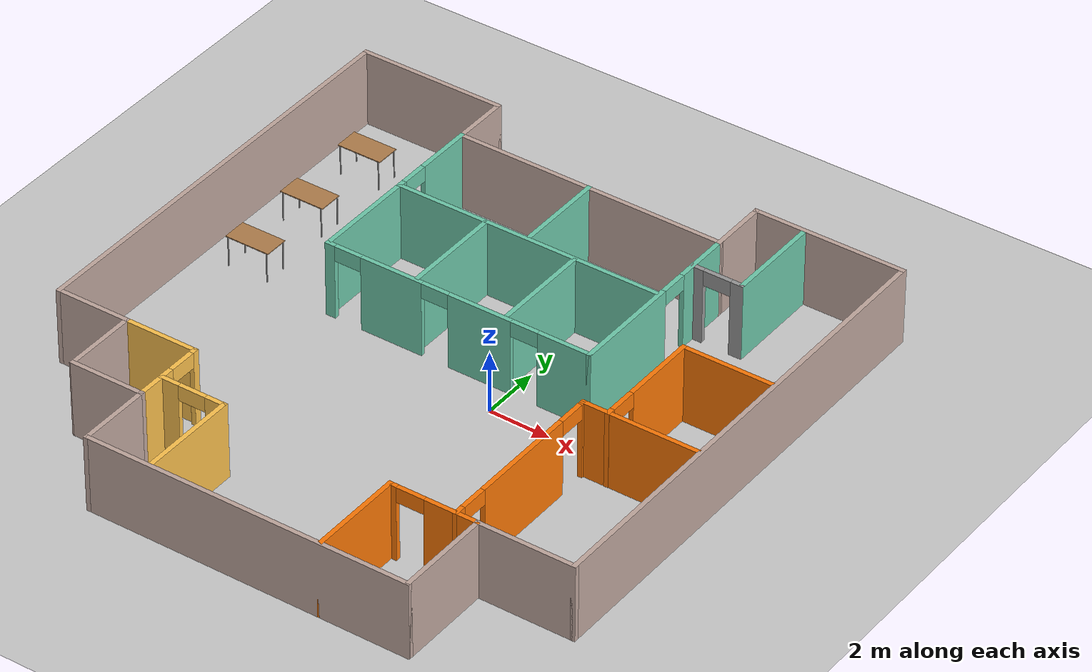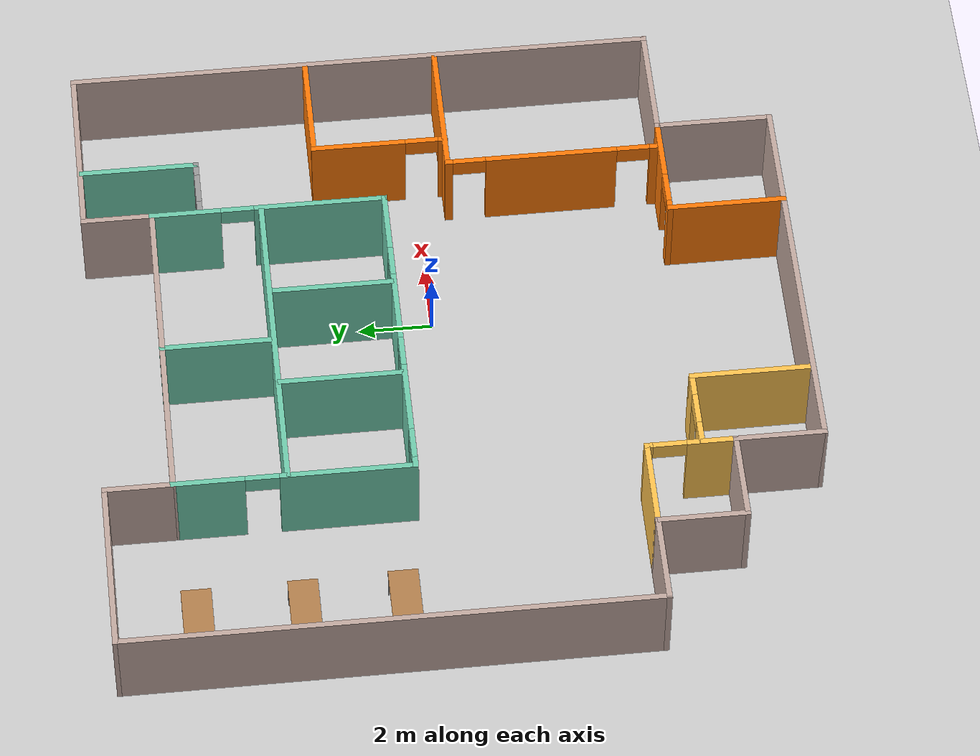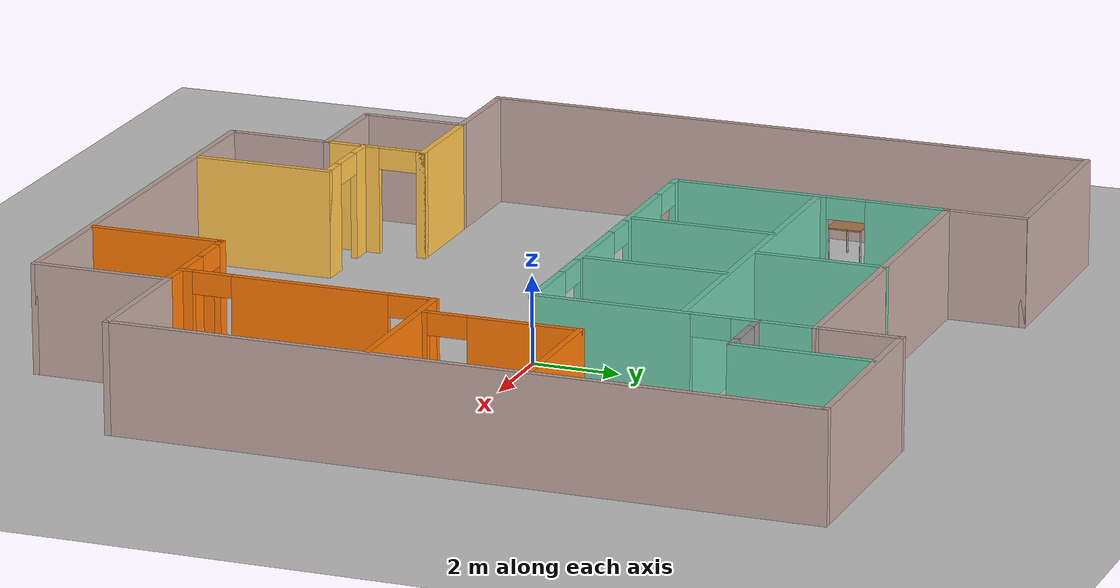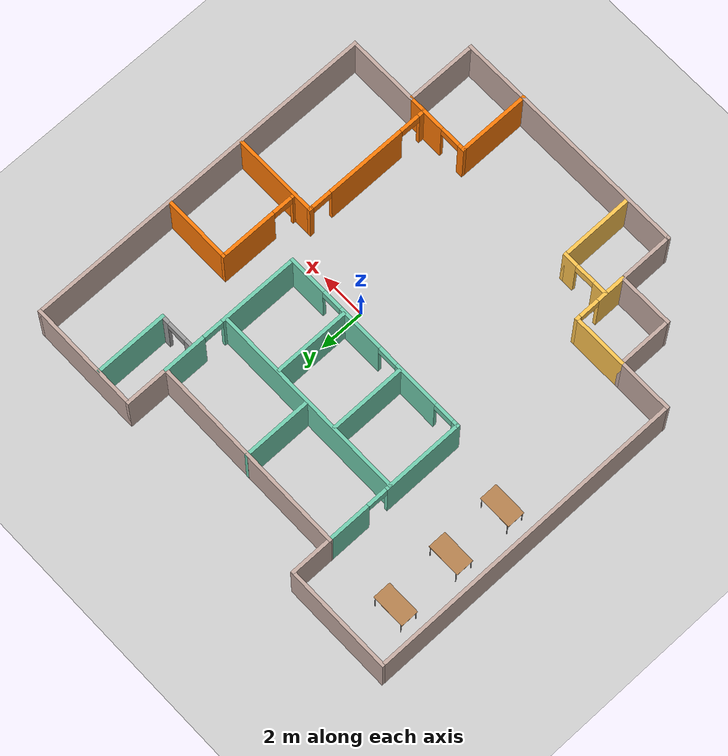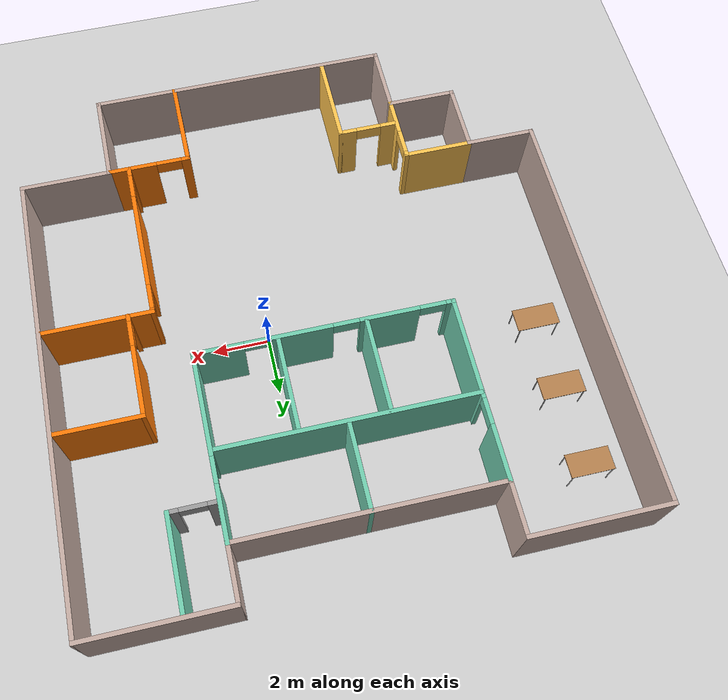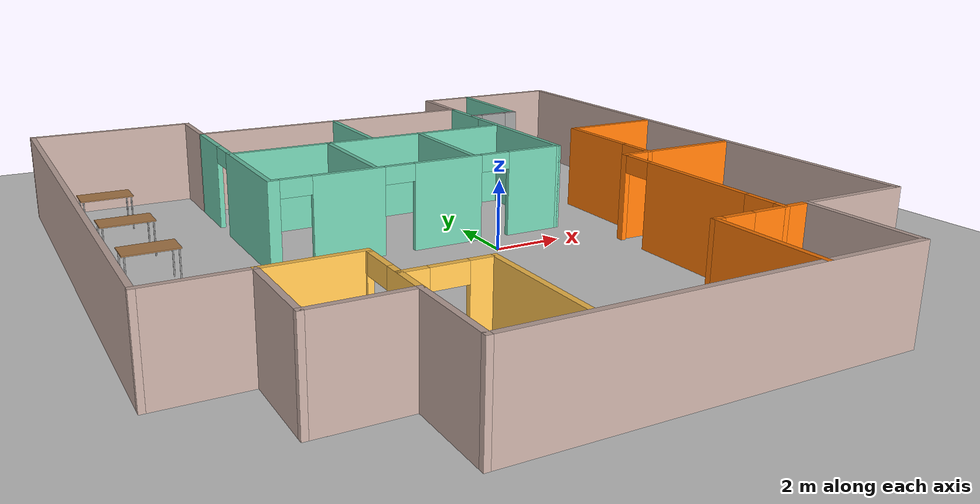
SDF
<sdf version="1.6">
 <world name="default">
  <model name="ground_plane">
   <static>1</static>
   <link name="link">
    <collision name="collision">
     <geometry><plane><normal>0 0 1</normal><size>100 100</size></plane></geometry>
     <surface>
      <contact><collide_bitmask>65535</collide_bitmask></contact>
      <friction><ode><mu>100</mu><mu2>50</mu2></ode></friction>
     </surface>
    </collision>
    <visual name="visual">
     <cast_shadows>0</cast_shadows>
     <geometry><plane><normal>0 0 1</normal><size>100 100</size></plane></geometry>
     <material>
      <script><uri>file://media/materials/scripts/gazebo.material</uri><name>Gazebo/Grey</name></script>
     </material>
    </visual>
   </link>
  </model>
  <model name="mybuilding">
   <pose>-1.73634 -0.27598 0 0 -0 0</pose>
   <link name="Wall_0">
    <collision name="Wall_0_Collision">
     <geometry><box><size>4.85 0.15 2.5</size></box></geometry>
     <pose>0 0 1.25 0 -0 0</pose>
    </collision>
    <visual name="Wall_0_Visual">
     <pose>0 0 1.25 0 -0 0</pose>
     <geometry><box><size>4.85 0.15 2.5</size></box></geometry>
     <material>
      <script><uri>file://media/materials/scripts/gazebo.material</uri><name>Gazebo/Grey</name></script>
      <ambient>0.760784 0.662745 0.627451 1</ambient>
     </material>
     <meta><layer>0</layer></meta>
    </visual>
    <pose>-6.85 9.445 0 0 -0 0</pose>
   </link>
   <link name="Wall_1">
    <collision name="Wall_1_Collision">
     <geometry><box><size>1.92941 0.15 2.5</size></box></geometry>
     <pose>0 0 1.25 0 -0 0</pose>
    </collision>
    <visual name="Wall_1_Visual">
     <pose>0 0 1.25 0 -0 0</pose>
     <geometry><box><size>1.92941 0.15 2.5</size></box></geometry>
     <material>
      <script><uri>file://media/materials/scripts/gazebo.material</uri><name>Gazebo/Grey</name></script>
      <ambient>0.760784 0.662745 0.627451 1</ambient>
     </material>
     <meta><layer>0</layer></meta>
    </visual>
    <pose>-4.5 8.54529 0 0 0 -1.5708</pose>
   </link>
   <link name="Wall_10">
    <collision name="Wall_10_Collision">
     <geometry><box><size>10.75 0.15 2.5</size></box></geometry>
     <pose>0 0 1.25 0 -0 0</pose>
    </collision>
    <visual name="Wall_10_Visual">
     <pose>0 0 1.25 0 -0 0</pose>
     <geometry><box><size>10.75 0.15 2.5</size></box></geometry>
     <material>
      <script><uri>file://media/materials/scripts/gazebo.material</uri><name>Gazebo/Grey</name></script>
      <ambient>0.760784 0.662745 0.627451 1</ambient>
     </material>
     <meta><layer>0</layer></meta>
    </visual>
    <pose>0.8 -9.475 0 0 -0 3.14159</pose>
   </link>
   <link name="Wall_12">
    <collision name="Wall_12_Collision">
     <geometry><box><size>2.5 0.15 2.5</size></box></geometry>
     <pose>0 0 1.25 0 -0 0</pose>
    </collision>
    <visual name="Wall_12_Visual">
     <pose>0 0 1.25 0 -0 0</pose>
     <geometry><box><size>2.5 0.15 2.5</size></box></geometry>
     <material>
      <script><uri>file://media/materials/scripts/gazebo.material</uri><name>Gazebo/Grey</name></script>
      <ambient>0.760784 0.662745 0.627451 1</ambient>
     </material>
     <meta><layer>0</layer></meta>
    </visual>
    <pose>-4.5 -8.3 0 0 -0 1.5708</pose>
   </link>
   <link name="Wall_13">
    <collision name="Wall_13_Collision">
     <geometry><box><size>2.5 0.15 2.5</size></box></geometry>
     <pose>0 0 1.25 0 -0 0</pose>
    </collision>
    <visual name="Wall_13_Visual">
     <pose>0 0 1.25 0 -0 0</pose>
     <geometry><box><size>2.5 0.15 2.5</size></box></geometry>
     <material>
      <script><uri>file://media/materials/scripts/gazebo.material</uri><name>Gazebo/Grey</name></script>
      <ambient>0.760784 0.662745 0.627451 1</ambient>
     </material>
     <meta><layer>0</layer></meta>
    </visual>
    <pose>-5.675 -7.125 0 0 -0 3.14159</pose>
   </link>
   <link name="Wall_14">
    <collision name="Wall_14_Collision">
     <geometry><box><size>2.5 0.15 2.5</size></box></geometry>
     <pose>0 0 1.25 0 -0 0</pose>
    </collision>
    <visual name="Wall_14_Visual">
     <pose>0 0 1.25 0 -0 0</pose>
     <geometry><box><size>2.5 0.15 2.5</size></box></geometry>
     <material>
      <script><uri>file://media/materials/scripts/gazebo.material</uri><name>Gazebo/Grey</name></script>
      <ambient>0.760784 0.662745 0.627451 1</ambient>
     </material>
     <meta><layer>0</layer></meta>
    </visual>
    <pose>-6.85 -5.95 0 0 -0 1.5708</pose>
   </link>
   <link name="Wall_15">
    <collision name="Wall_15_Collision">
     <geometry><box><size>2.5 0.15 2.5</size></box></geometry>
     <pose>0 0 1.25 0 -0 0</pose>
    </collision>
    <visual name="Wall_15_Visual">
     <pose>0 0 1.25 0 -0 0</pose>
     <geometry><box><size>2.5 0.15 2.5</size></box></geometry>
     <material>
      <script><uri>file://media/materials/scripts/gazebo.material</uri><name>Gazebo/Grey</name></script>
      <ambient>0.760784 0.662745 0.627451 1</ambient>
     </material>
     <meta><layer>0</layer></meta>
    </visual>
    <pose>-8.025 -4.775 0 0 -0 3.14159</pose>
   </link>
   <link name="Wall_16">
    <collision name="Wall_16_Collision">
     <geometry><box><size>14.25 0.15 2.5</size></box></geometry>
     <pose>0 0 1.25 0 -0 0</pose>
    </collision>
    <visual name="Wall_16_Visual">
     <pose>0 0 1.25 0 -0 0</pose>
     <geometry><box><size>14.25 0.15 2.5</size></box></geometry>
     <material>
      <script><uri>file://media/materials/scripts/gazebo.material</uri><name>Gazebo/Grey</name></script>
      <ambient>0.760784 0.662745 0.627451 1</ambient>
     </material>
     <meta><layer>0</layer></meta>
    </visual>
    <pose>-9.2 2.275 0 0 -0 1.5708</pose>
   </link>
   <link name="Wall_18">
    <collision name="Wall_18_Collision">
     <geometry><box><size>2.5 0.15 2.5</size></box></geometry>
     <pose>0 0 1.25 0 -0 0</pose>
    </collision>
    <visual name="Wall_18_Visual">
     <pose>0 0 1.25 0 -0 0</pose>
     <geometry><box><size>2.5 0.15 2.5</size></box></geometry>
     <material>
      <script><uri>file://media/materials/scripts/gazebo.material</uri><name>Gazebo/Grey</name></script>
      <ambient>1 0.764706 0.305882 1</ambient>
     </material>
     <meta><layer>0</layer></meta>
    </visual>
    <pose>-5.675 -4.775 0 0 -0 0</pose>
   </link>
   <link name="Wall_19">
    <pose>-4.5 -5.95 0 0 0 -1.5708</pose>
    <visual name="Wall_19_Visual_0">
     <pose>-1.13558 0 1.25 0 -0 0</pose>
     <geometry><box><size>0.228848 0.15 2.5</size></box></geometry>
     <material>
      <script><uri>file://media/materials/scripts/gazebo.material</uri><name>Gazebo/Grey</name></script>
      <ambient>1 0.764706 0.305882 1</ambient>
     </material>
     <meta><layer>0</layer></meta>
    </visual>
    <collision name="Wall_19_Collision_0">
     <geometry><box><size>0.228848 0.15 2.5</size></box></geometry>
     <pose>-1.13558 0 1.25 0 -0 0</pose>
    </collision>
    <visual name="Wall_19_Visual_1">
     <pose>0.564424 0 1.25 0 -0 0</pose>
     <geometry><box><size>1.37115 0.15 2.5</size></box></geometry>
     <material>
      <script><uri>file://media/materials/scripts/gazebo.material</uri><name>Gazebo/Grey</name></script>
      <ambient>1 0.764706 0.305882 1</ambient>
     </material>
     <meta><layer>0</layer></meta>
    </visual>
    <collision name="Wall_19_Collision_1">
     <geometry><box><size>1.37115 0.15 2.5</size></box></geometry>
     <pose>0.564424 0 1.25 0 -0 0</pose>
    </collision>
    <visual name="Wall_19_Visual_2">
     <pose>-0.571152 0 2.25 0 -0 0</pose>
     <geometry><box><size>0.9 0.15 0.5</size></box></geometry>
     <material>
      <script><uri>file://media/materials/scripts/gazebo.material</uri><name>Gazebo/Grey</name></script>
      <ambient>1 0.764706 0.305882 1</ambient>
     </material>
     <meta><layer>0</layer></meta>
    </visual>
    <collision name="Wall_19_Collision_2">
     <geometry><box><size>0.9 0.15 0.5</size></box></geometry>
     <pose>-0.571152 0 2.25 0 -0 0</pose>
    </collision>
   </link>
   <link name="Wall_2">
    <collision name="Wall_2_Collision">
     <geometry><box><size>9 0.15 2.5</size></box></geometry>
     <pose>0 0 1.25 0 -0 0</pose>
    </collision>
    <visual name="Wall_2_Visual">
     <pose>0 0 1.25 0 -0 0</pose>
     <geometry><box><size>9 0.15 2.5</size></box></geometry>
     <material>
      <script><uri>file://media/materials/scripts/gazebo.material</uri><name>Gazebo/Grey</name></script>
      <ambient>0.760784 0.662745 0.627451 1</ambient>
     </material>
     <meta><layer>0</layer></meta>
    </visual>
    <pose>-0.075 7.6403 0 0 0 -0.003457</pose>
   </link>
   <link name="Wall_21">
    <pose>-3.43491 -6.23586 0 0 -0 0</pose>
    <visual name="Wall_21_Visual_0">
     <pose>-0.787798 0 1.25 0 -0 0</pose>
     <geometry><box><size>0.674404 0.15 2.5</size></box></geometry>
     <material>
      <script><uri>file://media/materials/scripts/gazebo.material</uri><name>Gazebo/Grey</name></script>
      <ambient>1 0.764706 0.305882 1</ambient>
     </material>
     <meta><layer>0</layer></meta>
    </visual>
    <collision name="Wall_21_Collision_0">
     <geometry><box><size>0.674404 0.15 2.5</size></box></geometry>
     <pose>-0.787798 0 1.25 0 -0 0</pose>
    </collision>
    <visual name="Wall_21_Visual_1">
     <pose>0.787202 0 1.25 0 -0 0</pose>
     <geometry><box><size>0.675596 0.15 2.5</size></box></geometry>
     <material>
      <script><uri>file://media/materials/scripts/gazebo.material</uri><name>Gazebo/Grey</name></script>
      <ambient>1 0.764706 0.305882 1</ambient>
     </material>
     <meta><layer>0</layer></meta>
    </visual>
    <collision name="Wall_21_Collision_1">
     <geometry><box><size>0.675596 0.15 2.5</size></box></geometry>
     <pose>0.787202 0 1.25 0 -0 0</pose>
    </collision>
    <visual name="Wall_21_Visual_2">
     <pose>-0.000596 0 2.25 0 -0 0</pose>
     <geometry><box><size>0.9 0.15 0.5</size></box></geometry>
     <material>
      <script><uri>file://media/materials/scripts/gazebo.material</uri><name>Gazebo/Grey</name></script>
      <ambient>1 0.764706 0.305882 1</ambient>
     </material>
     <meta><layer>0</layer></meta>
    </visual>
    <collision name="Wall_21_Collision_2">
     <geometry><box><size>0.9 0.15 0.5</size></box></geometry>
     <pose>-0.000596 0 2.25 0 -0 0</pose>
    </collision>
   </link>
   <link name="Wall_22">
    <collision name="Wall_22_Collision">
     <geometry><box><size>3.25 0.15 2.5</size></box></geometry>
     <pose>0 0 1.25 0 -0 0</pose>
    </collision>
    <visual name="Wall_22_Visual">
     <pose>0 0 1.25 0 -0 0</pose>
     <geometry><box><size>3.25 0.15 2.5</size></box></geometry>
     <material>
      <script><uri>file://media/materials/scripts/gazebo.material</uri><name>Gazebo/Grey</name></script>
      <ambient>1 0.764706 0.305882 1</ambient>
     </material>
     <meta><layer>0</layer></meta>
    </visual>
    <pose>-2.3849 -7.78586 0 0 0 -1.5708</pose>
   </link>
   <link name="Wall_24">
    <pose>4.675 -6.375 0 0 -0 3.14159</pose>
    <visual name="Wall_24_Visual_0">
     <pose>-0.610153 0 1.25 0 -0 0</pose>
     <geometry><box><size>1.77969 0.15 2.5</size></box></geometry>
     <material>
      <script><uri>file://media/materials/scripts/gazebo.material</uri><name>Gazebo/Grey</name></script>
      <ambient>0.996078 0.47451 0.0196078 1</ambient>
     </material>
     <meta><layer>0</layer></meta>
    </visual>
    <collision name="Wall_24_Collision_0">
     <geometry><box><size>1.77969 0.15 2.5</size></box></geometry>
     <pose>-0.610153 0 1.25 0 -0 0</pose>
    </collision>
    <visual name="Wall_24_Visual_1">
     <pose>1.33985 0 1.25 0 -0 0</pose>
     <geometry><box><size>0.320306 0.15 2.5</size></box></geometry>
     <material>
      <script><uri>file://media/materials/scripts/gazebo.material</uri><name>Gazebo/Grey</name></script>
      <ambient>0.996078 0.47451 0.0196078 1</ambient>
     </material>
     <meta><layer>0</layer></meta>
    </visual>
    <collision name="Wall_24_Collision_1">
     <geometry><box><size>0.320306 0.15 2.5</size></box></geometry>
     <pose>1.33985 0 1.25 0 -0 0</pose>
    </collision>
    <visual name="Wall_24_Visual_2">
     <pose>0.729694 0 2.25 0 -0 0</pose>
     <geometry><box><size>0.9 0.15 0.5</size></box></geometry>
     <material>
      <script><uri>file://media/materials/scripts/gazebo.material</uri><name>Gazebo/Grey</name></script>
      <ambient>0.996078 0.47451 0.0196078 1</ambient>
     </material>
     <meta><layer>0</layer></meta>
    </visual>
    <collision name="Wall_24_Collision_2">
     <geometry><box><size>0.9 0.15 0.5</size></box></geometry>
     <pose>0.729694 0 2.25 0 -0 0</pose>
    </collision>
   </link>
   <link name="Wall_25">
    <collision name="Wall_25_Collision">
     <geometry><box><size>3.25 0.15 2.5</size></box></geometry>
     <pose>0 0 1.25 0 -0 0</pose>
    </collision>
    <visual name="Wall_25_Visual">
     <pose>0 0 1.25 0 -0 0</pose>
     <geometry><box><size>3.25 0.15 2.5</size></box></geometry>
     <material>
      <script><uri>file://media/materials/scripts/gazebo.material</uri><name>Gazebo/Grey</name></script>
      <ambient>0.996078 0.47451 0.0196078 1</ambient>
     </material>
     <meta><layer>0</layer></meta>
    </visual>
    <pose>3.25 -7.925 0 0 0 -1.5708</pose>
   </link>
   <link name="Wall_28">
    <pose>5.39698 -3.45078 0 0 -0 1.5708</pose>
    <visual name="Wall_28_Visual_0">
     <pose>-2.81146 0 1.25 0 -0 0</pose>
     <geometry><box><size>0.377073 0.15 2.5</size></box></geometry>
     <material>
      <script><uri>file://media/materials/scripts/gazebo.material</uri><name>Gazebo/Grey</name></script>
      <ambient>0.996078 0.47451 0.0196078 1</ambient>
     </material>
     <meta><layer>0</layer></meta>
    </visual>
    <collision name="Wall_28_Collision_0">
     <geometry><box><size>0.377073 0.15 2.5</size></box></geometry>
     <pose>-2.81146 0 1.25 0 -0 0</pose>
    </collision>
    <visual name="Wall_28_Visual_1">
     <pose>0.080213 0 1.25 0 -0 0</pose>
     <geometry><box><size>3.60628 0.15 2.5</size></box></geometry>
     <material>
      <script><uri>file://media/materials/scripts/gazebo.material</uri><name>Gazebo/Grey</name></script>
      <ambient>0.996078 0.47451 0.0196078 1</ambient>
     </material>
     <meta><layer>0</layer></meta>
    </visual>
    <collision name="Wall_28_Collision_1">
     <geometry><box><size>3.60628 0.15 2.5</size></box></geometry>
     <pose>0.080213 0 1.25 0 -0 0</pose>
    </collision>
    <visual name="Wall_28_Visual_2">
     <pose>2.89168 0 1.25 0 -0 0</pose>
     <geometry><box><size>0.216648 0.15 2.5</size></box></geometry>
     <material>
      <script><uri>file://media/materials/scripts/gazebo.material</uri><name>Gazebo/Grey</name></script>
      <ambient>0.996078 0.47451 0.0196078 1</ambient>
     </material>
     <meta><layer>0</layer></meta>
    </visual>
    <collision name="Wall_28_Collision_2">
     <geometry><box><size>0.216648 0.15 2.5</size></box></geometry>
     <pose>2.89168 0 1.25 0 -0 0</pose>
    </collision>
    <visual name="Wall_28_Visual_3">
     <pose>-2.17293 0 2.25 0 -0 0</pose>
     <geometry><box><size>0.9 0.15 0.5</size></box></geometry>
     <material>
      <script><uri>file://media/materials/scripts/gazebo.material</uri><name>Gazebo/Grey</name></script>
      <ambient>0.996078 0.47451 0.0196078 1</ambient>
     </material>
     <meta><layer>0</layer></meta>
    </visual>
    <collision name="Wall_28_Collision_3">
     <geometry><box><size>0.9 0.15 0.5</size></box></geometry>
     <pose>-2.17293 0 2.25 0 -0 0</pose>
    </collision>
    <visual name="Wall_28_Visual_4">
     <pose>2.33335 0 2.25 0 -0 0</pose>
     <geometry><box><size>0.9 0.15 0.5</size></box></geometry>
     <material>
      <script><uri>file://media/materials/scripts/gazebo.material</uri><name>Gazebo/Grey</name></script>
      <ambient>0.996078 0.47451 0.0196078 1</ambient>
     </material>
     <meta><layer>0</layer></meta>
    </visual>
    <collision name="Wall_28_Collision_4">
     <geometry><box><size>0.9 0.15 0.5</size></box></geometry>
     <pose>2.33335 0 2.25 0 -0 0</pose>
    </collision>
   </link>
   <link name="Wall_3">
    <collision name="Wall_3_Collision">
     <geometry><box><size>2 0.15 2.5</size></box></geometry>
     <pose>0 0 1.25 0 -0 0</pose>
    </collision>
    <visual name="Wall_3_Visual">
     <pose>0 0 1.25 0 -0 0</pose>
     <geometry><box><size>2 0.15 2.5</size></box></geometry>
     <material>
      <script><uri>file://media/materials/scripts/gazebo.material</uri><name>Gazebo/Grey</name></script>
      <ambient>0.760784 0.662745 0.627451 1</ambient>
     </material>
     <meta><layer>0</layer></meta>
    </visual>
    <pose>4.35 8.55 0 0 -0 1.5708</pose>
   </link>
   <link name="Wall_32">
    <collision name="Wall_32_Collision">
     <geometry><box><size>3.85 0.15 2.5</size></box></geometry>
     <pose>0 0 1.25 0 -0 0</pose>
    </collision>
    <visual name="Wall_32_Visual">
     <pose>0 0 1.25 0 -0 0</pose>
     <geometry><box><size>3.85 0.15 2.5</size></box></geometry>
     <material>
      <script><uri>file://media/materials/scripts/gazebo.material</uri><name>Gazebo/Grey</name></script>
      <ambient>0.996078 0.47451 0.0196078 1</ambient>
     </material>
     <meta><layer>0</layer></meta>
    </visual>
    <pose>7.24698 -0.525782 0 0 -0 0</pose>
   </link>
   <link name="Wall_34">
    <pose>-4.5 4.48059 0 0 0 -1.5708</pose>
    <visual name="Wall_34_Visual_0">
     <pose>-2.27107 0 1.25 0 -0 0</pose>
     <geometry><box><size>1.95787 0.15 2.5</size></box></geometry>
     <material>
      <script><uri>file://media/materials/scripts/gazebo.material</uri><name>Gazebo/Grey</name></script>
      <ambient>0.435294 0.796078 0.67451 1</ambient>
     </material>
     <meta><layer>0</layer></meta>
    </visual>
    <collision name="Wall_34_Collision_0">
     <geometry><box><size>1.95787 0.15 2.5</size></box></geometry>
     <pose>-2.27107 0 1.25 0 -0 0</pose>
    </collision>
    <visual name="Wall_34_Visual_1">
     <pose>1.42893 0 1.25 0 -0 0</pose>
     <geometry><box><size>3.64213 0.15 2.5</size></box></geometry>
     <material>
      <script><uri>file://media/materials/scripts/gazebo.material</uri><name>Gazebo/Grey</name></script>
      <ambient>0.435294 0.796078 0.67451 1</ambient>
     </material>
     <meta><layer>0</layer></meta>
    </visual>
    <collision name="Wall_34_Collision_1">
     <geometry><box><size>3.64213 0.15 2.5</size></box></geometry>
     <pose>1.42893 0 1.25 0 -0 0</pose>
    </collision>
    <visual name="Wall_34_Visual_2">
     <pose>-0.842134 0 2.25 0 -0 0</pose>
     <geometry><box><size>0.9 0.15 0.5</size></box></geometry>
     <material>
      <script><uri>file://media/materials/scripts/gazebo.material</uri><name>Gazebo/Grey</name></script>
      <ambient>0.435294 0.796078 0.67451 1</ambient>
     </material>
     <meta><layer>0</layer></meta>
    </visual>
    <collision name="Wall_34_Collision_2">
     <geometry><box><size>0.9 0.15 0.5</size></box></geometry>
     <pose>-0.842134 0 2.25 0 -0 0</pose>
    </collision>
   </link>
   <link name="Wall_36">
    <pose>-0.075 1.30559 0 0 -0 0</pose>
    <visual name="Wall_36_Visual_0">
     <pose>-4.3354 0 1.25 0 -0 0</pose>
     <geometry><box><size>0.329192 0.15 2.5</size></box></geometry>
     <material>
      <script><uri>file://media/materials/scripts/gazebo.material</uri><name>Gazebo/Grey</name></script>
      <ambient>0.435294 0.796078 0.67451 1</ambient>
     </material>
     <meta><layer>0</layer></meta>
    </visual>
    <collision name="Wall_36_Collision_0">
     <geometry><box><size>0.329192 0.15 2.5</size></box></geometry>
     <pose>-4.3354 0 1.25 0 -0 0</pose>
    </collision>
    <visual name="Wall_36_Visual_1">
     <pose>-2.23035 0 1.25 0 -0 0</pose>
     <geometry><box><size>2.08092 0.15 2.5</size></box></geometry>
     <material>
      <script><uri>file://media/materials/scripts/gazebo.material</uri><name>Gazebo/Grey</name></script>
      <ambient>0.435294 0.796078 0.67451 1</ambient>
     </material>
     <meta><layer>0</layer></meta>
    </visual>
    <collision name="Wall_36_Collision_1">
     <geometry><box><size>2.08092 0.15 2.5</size></box></geometry>
     <pose>-2.23035 0 1.25 0 -0 0</pose>
    </collision>
    <visual name="Wall_36_Visual_2">
     <pose>0.765773 0 1.25 0 -0 0</pose>
     <geometry><box><size>2.11133 0.15 2.5</size></box></geometry>
     <material>
      <script><uri>file://media/materials/scripts/gazebo.material</uri><name>Gazebo/Grey</name></script>
      <ambient>0.435294 0.796078 0.67451 1</ambient>
     </material>
     <meta><layer>0</layer></meta>
    </visual>
    <collision name="Wall_36_Collision_2">
     <geometry><box><size>2.11133 0.15 2.5</size></box></geometry>
     <pose>0.765773 0 1.25 0 -0 0</pose>
    </collision>
    <visual name="Wall_36_Visual_3">
     <pose>3.61072 0 1.25 0 -0 0</pose>
     <geometry><box><size>1.77856 0.15 2.5</size></box></geometry>
     <material>
      <script><uri>file://media/materials/scripts/gazebo.material</uri><name>Gazebo/Grey</name></script>
      <ambient>0.435294 0.796078 0.67451 1</ambient>
     </material>
     <meta><layer>0</layer></meta>
    </visual>
    <collision name="Wall_36_Collision_3">
     <geometry><box><size>1.77856 0.15 2.5</size></box></geometry>
     <pose>3.61072 0 1.25 0 -0 0</pose>
    </collision>
    <visual name="Wall_36_Visual_4">
     <pose>-3.72081 0 2.25 0 -0 0</pose>
     <geometry><box><size>0.9 0.15 0.5</size></box></geometry>
     <material>
      <script><uri>file://media/materials/scripts/gazebo.material</uri><name>Gazebo/Grey</name></script>
      <ambient>0.435294 0.796078 0.67451 1</ambient>
     </material>
     <meta><layer>0</layer></meta>
    </visual>
    <collision name="Wall_36_Collision_4">
     <geometry><box><size>0.9 0.15 0.5</size></box></geometry>
     <pose>-3.72081 0 2.25 0 -0 0</pose>
    </collision>
    <visual name="Wall_36_Visual_5">
     <pose>-0.739893 0 2.25 0 -0 0</pose>
     <geometry><box><size>0.9 0.15 0.5</size></box></geometry>
     <material>
      <script><uri>file://media/materials/scripts/gazebo.material</uri><name>Gazebo/Grey</name></script>
      <ambient>0.435294 0.796078 0.67451 1</ambient>
     </material>
     <meta><layer>0</layer></meta>
    </visual>
    <collision name="Wall_36_Collision_5">
     <geometry><box><size>0.9 0.15 0.5</size></box></geometry>
     <pose>-0.739893 0 2.25 0 -0 0</pose>
    </collision>
    <visual name="Wall_36_Visual_6">
     <pose>2.27144 0 2.25 0 -0 0</pose>
     <geometry><box><size>0.9 0.15 0.5</size></box></geometry>
     <material>
      <script><uri>file://media/materials/scripts/gazebo.material</uri><name>Gazebo/Grey</name></script>
      <ambient>0.435294 0.796078 0.67451 1</ambient>
     </material>
     <meta><layer>0</layer></meta>
    </visual>
    <collision name="Wall_36_Collision_6">
     <geometry><box><size>0.9 0.15 0.5</size></box></geometry>
     <pose>2.27144 0 2.25 0 -0 0</pose>
    </collision>
   </link>
   <link name="Wall_39">
    <pose>4.35 4.46529 0 0 -0 1.5708</pose>
    <visual name="Wall_39_Visual_0">
     <pose>-1.42238 0 1.25 0 -0 0</pose>
     <geometry><box><size>3.62464 0.15 2.5</size></box></geometry>
     <material>
      <script><uri>file://media/materials/scripts/gazebo.material</uri><name>Gazebo/Grey</name></script>
      <ambient>0.435294 0.796078 0.67451 1</ambient>
     </material>
     <meta><layer>0</layer></meta>
    </visual>
    <collision name="Wall_39_Collision_0">
     <geometry><box><size>3.62464 0.15 2.5</size></box></geometry>
     <pose>-1.42238 0 1.25 0 -0 0</pose>
    </collision>
    <visual name="Wall_39_Visual_1">
     <pose>2.26232 0 1.25 0 -0 0</pose>
     <geometry><box><size>1.94477 0.15 2.5</size></box></geometry>
     <material>
      <script><uri>file://media/materials/scripts/gazebo.material</uri><name>Gazebo/Grey</name></script>
      <ambient>0.435294 0.796078 0.67451 1</ambient>
     </material>
     <meta><layer>0</layer></meta>
    </visual>
    <collision name="Wall_39_Collision_1">
     <geometry><box><size>1.94477 0.15 2.5</size></box></geometry>
     <pose>2.26232 0 1.25 0 -0 0</pose>
    </collision>
    <visual name="Wall_39_Visual_2">
     <pose>0.839939 0 2.25 0 -0 0</pose>
     <geometry><box><size>0.9 0.15 0.5</size></box></geometry>
     <material>
      <script><uri>file://media/materials/scripts/gazebo.material</uri><name>Gazebo/Grey</name></script>
      <ambient>0.435294 0.796078 0.67451 1</ambient>
     </material>
     <meta><layer>0</layer></meta>
    </visual>
    <collision name="Wall_39_Collision_2">
     <geometry><box><size>0.9 0.15 0.5</size></box></geometry>
     <pose>0.839939 0 2.25 0 -0 0</pose>
    </collision>
   </link>
   <link name="Wall_4">
    <collision name="Wall_4_Collision">
     <geometry><box><size>5 0.15 2.5</size></box></geometry>
     <pose>0 0 1.25 0 -0 0</pose>
    </collision>
    <visual name="Wall_4_Visual">
     <pose>0 0 1.25 0 -0 0</pose>
     <geometry><box><size>5 0.15 2.5</size></box></geometry>
     <material>
      <script><uri>file://media/materials/scripts/gazebo.material</uri><name>Gazebo/Grey</name></script>
      <ambient>0.760784 0.662745 0.627451 1</ambient>
     </material>
     <meta><layer>0</layer></meta>
    </visual>
    <pose>6.775 9.475 0 0 -0 0</pose>
   </link>
   <link name="Wall_41">
    <collision name="Wall_41_Collision">
     <geometry><box><size>8.85 0.15 2.5</size></box></geometry>
     <pose>0 0 1.25 0 -0 0</pose>
    </collision>
    <visual name="Wall_41_Visual">
     <pose>0 0 1.25 0 -0 0</pose>
     <geometry><box><size>8.85 0.15 2.5</size></box></geometry>
     <material>
      <script><uri>file://media/materials/scripts/gazebo.material</uri><name>Gazebo/Grey</name></script>
      <ambient>0.435294 0.796078 0.67451 1</ambient>
     </material>
     <meta><layer>0</layer></meta>
    </visual>
    <pose>-0.116418 4.65945 0 0 -0 0</pose>
   </link>
   <link name="Wall_43">
    <collision name="Wall_43_Collision">
     <geometry><box><size>3 0.15 2.5</size></box></geometry>
     <pose>0 0 1.25 0 -0 0</pose>
    </collision>
    <visual name="Wall_43_Visual">
     <pose>0 0 1.25 0 -0 0</pose>
     <geometry><box><size>3 0.15 2.5</size></box></geometry>
     <material>
      <script><uri>file://media/materials/scripts/gazebo.material</uri><name>Gazebo/Grey</name></script>
      <ambient>0.435294 0.796078 0.67451 1</ambient>
     </material>
     <meta><layer>0</layer></meta>
    </visual>
    <pose>-0.095849 6.22004 0 0 0 -1.5708</pose>
   </link>
   <link name="Wall_45">
    <collision name="Wall_45_Collision">
     <geometry><box><size>3.35 0.15 2.5</size></box></geometry>
     <pose>0 0 1.25 0 -0 0</pose>
    </collision>
    <visual name="Wall_45_Visual">
     <pose>0 0 1.25 0 -0 0</pose>
     <geometry><box><size>3.35 0.15 2.5</size></box></geometry>
     <material>
      <script><uri>file://media/materials/scripts/gazebo.material</uri><name>Gazebo/Grey</name></script>
      <ambient>0.435294 0.796078 0.67451 1</ambient>
     </material>
     <meta><layer>0</layer></meta>
    </visual>
    <pose>-1.49929 3.00734 0 0 0 -1.5708</pose>
   </link>
   <link name="Wall_5">
    <collision name="Wall_5_Collision">
     <geometry><box><size>16 0.15 2.5</size></box></geometry>
     <pose>0 0 1.25 0 -0 0</pose>
    </collision>
    <visual name="Wall_5_Visual">
     <pose>0 0 1.25 0 -0 0</pose>
     <geometry><box><size>16 0.15 2.5</size></box></geometry>
     <material>
      <script><uri>file://media/materials/scripts/gazebo.material</uri><name>Gazebo/Grey</name></script>
      <ambient>0.760784 0.662745 0.627451 1</ambient>
     </material>
     <meta><layer>0</layer></meta>
    </visual>
    <pose>9.2 1.55 0 0 0 -1.5708</pose>
   </link>
   <link name="Wall_50">
    <collision name="Wall_50_Collision">
     <geometry><box><size>3.35 0.15 2.5</size></box></geometry>
     <pose>0 0 1.25 0 -0 0</pose>
    </collision>
    <visual name="Wall_50_Visual">
     <pose>0 0 1.25 0 -0 0</pose>
     <geometry><box><size>3.35 0.15 2.5</size></box></geometry>
     <material>
      <script><uri>file://media/materials/scripts/gazebo.material</uri><name>Gazebo/Grey</name></script>
      <ambient>0.435294 0.796078 0.67451 1</ambient>
     </material>
     <meta><layer>0</layer></meta>
    </visual>
    <pose>1.51205 2.99214 0 0 0 -1.5708</pose>
   </link>
   <link name="Wall_53">
    <pose>5.18156 6.317 0 0 -0 0</pose>
    <visual name="Wall_53_Visual_0">
     <pose>-0.664994 0 1.25 0 -0 0</pose>
     <geometry><box><size>0.420012 0.15 2.5</size></box></geometry>
     <material>
      <script><uri>file://media/materials/scripts/gazebo.material</uri><name>Gazebo/Grey</name></script>
      <ambient>1 1 1 1</ambient>
     </material>
     <meta><layer>0</layer></meta>
    </visual>
    <collision name="Wall_53_Collision_0">
     <geometry><box><size>0.420012 0.15 2.5</size></box></geometry>
     <pose>-0.664994 0 1.25 0 -0 0</pose>
    </collision>
    <visual name="Wall_53_Visual_1">
     <pose>0.660006 0 1.25 0 -0 0</pose>
     <geometry><box><size>0.429988 0.15 2.5</size></box></geometry>
     <material>
      <script><uri>file://media/materials/scripts/gazebo.material</uri><name>Gazebo/Grey</name></script>
      <ambient>1 1 1 1</ambient>
     </material>
     <meta><layer>0</layer></meta>
    </visual>
    <collision name="Wall_53_Collision_1">
     <geometry><box><size>0.429988 0.15 2.5</size></box></geometry>
     <pose>0.660006 0 1.25 0 -0 0</pose>
    </collision>
    <visual name="Wall_53_Visual_2">
     <pose>-0.004988 0 2.25 0 -0 0</pose>
     <geometry><box><size>0.9 0.15 0.5</size></box></geometry>
     <material>
      <script><uri>file://media/materials/scripts/gazebo.material</uri><name>Gazebo/Grey</name></script>
      <ambient>1 1 1 1</ambient>
     </material>
     <meta><layer>0</layer></meta>
    </visual>
    <collision name="Wall_53_Collision_2">
     <geometry><box><size>0.9 0.15 0.5</size></box></geometry>
     <pose>-0.004988 0 2.25 0 -0 0</pose>
    </collision>
   </link>
   <link name="Wall_54">
    <collision name="Wall_54_Collision">
     <geometry><box><size>3.25 0.15 2.5</size></box></geometry>
     <pose>0 0 1.25 0 -0 0</pose>
    </collision>
    <visual name="Wall_54_Visual">
     <pose>0 0 1.25 0 -0 0</pose>
     <geometry><box><size>3.25 0.15 2.5</size></box></geometry>
     <material>
      <script><uri>file://media/materials/scripts/gazebo.material</uri><name>Gazebo/Grey</name></script>
      <ambient>0.435294 0.796078 0.67451 1</ambient>
     </material>
     <meta><layer>0</layer></meta>
    </visual>
    <pose>5.98156 7.867 0 0 -0 1.5708</pose>
   </link>
   <link name="Wall_58">
    <pose>6.22247 1.26586 0 0 -0 1.5708</pose>
    <visual name="Wall_58_Visual_0">
     <pose>-1.74068 0 1.25 0 -0 0</pose>
     <geometry><box><size>0.268634 0.15 2.5</size></box></geometry>
     <material>
      <script><uri>file://media/materials/scripts/gazebo.material</uri><name>Gazebo/Grey</name></script>
      <ambient>0.996078 0.47451 0.0196078 1</ambient>
     </material>
     <meta><layer>0</layer></meta>
    </visual>
    <collision name="Wall_58_Collision_0">
     <geometry><box><size>0.268634 0.15 2.5</size></box></geometry>
     <pose>-1.74068 0 1.25 0 -0 0</pose>
    </collision>
    <visual name="Wall_58_Visual_1">
     <pose>0.584317 0 1.25 0 -0 0</pose>
     <geometry><box><size>2.58137 0.15 2.5</size></box></geometry>
     <material>
      <script><uri>file://media/materials/scripts/gazebo.material</uri><name>Gazebo/Grey</name></script>
      <ambient>0.996078 0.47451 0.0196078 1</ambient>
     </material>
     <meta><layer>0</layer></meta>
    </visual>
    <collision name="Wall_58_Collision_1">
     <geometry><box><size>2.58137 0.15 2.5</size></box></geometry>
     <pose>0.584317 0 1.25 0 -0 0</pose>
    </collision>
    <visual name="Wall_58_Visual_2">
     <pose>-1.15637 0 2.25 0 -0 0</pose>
     <geometry><box><size>0.9 0.15 0.5</size></box></geometry>
     <material>
      <script><uri>file://media/materials/scripts/gazebo.material</uri><name>Gazebo/Grey</name></script>
      <ambient>0.996078 0.47451 0.0196078 1</ambient>
     </material>
     <meta><layer>0</layer></meta>
    </visual>
    <collision name="Wall_58_Collision_2">
     <geometry><box><size>0.9 0.15 0.5</size></box></geometry>
     <pose>-1.15637 0 2.25 0 -0 0</pose>
    </collision>
   </link>
   <link name="Wall_59">
    <collision name="Wall_59_Collision">
     <geometry><box><size>3 0.15 2.5</size></box></geometry>
     <pose>0 0 1.25 0 -0 0</pose>
    </collision>
    <visual name="Wall_59_Visual">
     <pose>0 0 1.25 0 -0 0</pose>
     <geometry><box><size>3 0.15 2.5</size></box></geometry>
     <material>
      <script><uri>file://media/materials/scripts/gazebo.material</uri><name>Gazebo/Grey</name></script>
      <ambient>0.996078 0.47451 0.0196078 1</ambient>
     </material>
     <meta><layer>0</layer></meta>
    </visual>
    <pose>7.64747 3.06586 0 0 -0 0</pose>
   </link>
   <link name="Wall_7">
    <collision name="Wall_7_Collision">
     <geometry><box><size>3.25 0.15 2.5</size></box></geometry>
     <pose>0 0 1.25 0 -0 0</pose>
    </collision>
    <visual name="Wall_7_Visual">
     <pose>0 0 1.25 0 -0 0</pose>
     <geometry><box><size>3.25 0.15 2.5</size></box></geometry>
     <material>
      <script><uri>file://media/materials/scripts/gazebo.material</uri><name>Gazebo/Grey</name></script>
      <ambient>0.760784 0.662745 0.627451 1</ambient>
     </material>
     <meta><layer>0</layer></meta>
    </visual>
    <pose>7.65 -6.375 0 0 -0 3.14159</pose>
   </link>
   <link name="Wall_9">
    <collision name="Wall_9_Collision">
     <geometry><box><size>3.25 0.15 2.5</size></box></geometry>
     <pose>0 0 1.25 0 -0 0</pose>
    </collision>
    <visual name="Wall_9_Visual">
     <pose>0 0 1.25 0 -0 0</pose>
     <geometry><box><size>3.25 0.15 2.5</size></box></geometry>
     <material>
      <script><uri>file://media/materials/scripts/gazebo.material</uri><name>Gazebo/Grey</name></script>
      <ambient>0.760784 0.662745 0.627451 1</ambient>
     </material>
     <meta><layer>0</layer></meta>
    </visual>
    <pose>6.1 -7.925 0 0 0 -1.5708</pose>
   </link>
   <static>1</static>
  </model>
  <model name="table_0">
   <static>1</static>
   <link name="link">
    <collision name="surface">
     <pose>0 0 1 0 -0 0</pose>
     <geometry><box><size>1.5 0.8 0.03</size></box></geometry>
     <surface><friction><ode><mu>0.6</mu><mu2>0.6</mu2></ode></friction></surface>
    </collision>
    <visual name="visual1">
     <pose>0 0 1 0 -0 0</pose>
     <geometry><box><size>1.5 0.8 0.03</size></box></geometry>
     <material>
      <script><uri>file://media/materials/scripts/gazebo.material</uri><name>Gazebo/Wood</name></script>
     </material>
    </visual>
    <collision name="front_left_leg">
     <pose>0.68 0.38 0.5 0 -0 0</pose>
     <geometry><cylinder><radius>0.02</radius><length>1</length></cylinder></geometry>
    </collision>
    <visual name="front_left_leg">
     <pose>0.68 0.38 0.5 0 -0 0</pose>
     <geometry><cylinder><radius>0.02</radius><length>1</length></cylinder></geometry>
     <material>
      <script><uri>file://media/materials/scripts/gazebo.material</uri><name>Gazebo/Grey</name></script>
     </material>
    </visual>
    <collision name="front_right_leg">
     <pose>0.68 -0.38 0.5 0 -0 0</pose>
     <geometry><cylinder><radius>0.02</radius><length>1</length></cylinder></geometry>
    </collision>
    <visual name="front_right_leg">
     <pose>0.68 -0.38 0.5 0 -0 0</pose>
     <geometry><cylinder><radius>0.02</radius><length>1</length></cylinder></geometry>
     <material>
      <script><uri>file://media/materials/scripts/gazebo.material</uri><name>Gazebo/Grey</name></script>
     </material>
    </visual>
    <collision name="back_right_leg">
     <pose>-0.68 -0.38 0.5 0 -0 0</pose>
     <geometry><cylinder><radius>0.02</radius><length>1</length></cylinder></geometry>
    </collision>
    <visual name="back_right_leg">
     <pose>-0.68 -0.38 0.5 0 -0 0</pose>
     <geometry><cylinder><radius>0.02</radius><length>1</length></cylinder></geometry>
     <material>
      <script><uri>file://media/materials/scripts/gazebo.material</uri><name>Gazebo/Grey</name></script>
     </material>
    </visual>
    <collision name="back_left_leg">
     <pose>-0.68 0.38 0.5 0 -0 0</pose>
     <geometry><cylinder><radius>0.02</radius><length>1</length></cylinder></geometry>
    </collision>
    <visual name="back_left_leg">
     <pose>-0.68 0.38 0.5 0 -0 0</pose>
     <geometry><cylinder><radius>0.02</radius><length>1</length></cylinder></geometry>
     <material>
      <script><uri>file://media/materials/scripts/gazebo.material</uri><name>Gazebo/Grey</name></script>
     </material>
    </visual>
   </link>
   <pose>-9.2551 1.58795 0 0 -0 0</pose>
  </model>
  <model name="table_0_clone">
   <static>1</static>
   <link name="link">
    <collision name="surface">
     <pose>0 0 1 0 -0 0</pose>
     <geometry><box><size>1.5 0.8 0.03</size></box></geometry>
     <surface><friction><ode><mu>0.6</mu><mu2>0.6</mu2></ode></friction></surface>
    </collision>
    <visual name="visual1">
     <pose>0 0 1 0 -0 0</pose>
     <geometry><box><size>1.5 0.8 0.03</size></box></geometry>
     <material>
      <script><uri>file://media/materials/scripts/gazebo.material</uri><name>Gazebo/Wood</name></script>
     </material>
    </visual>
    <collision name="front_left_leg">
     <pose>0.68 0.38 0.5 0 -0 0</pose>
     <geometry><cylinder><radius>0.02</radius><length>1</length></cylinder></geometry>
    </collision>
    <visual name="front_left_leg">
     <pose>0.68 0.38 0.5 0 -0 0</pose>
     <geometry><cylinder><radius>0.02</radius><length>1</length></cylinder></geometry>
     <material>
      <script><uri>file://media/materials/scripts/gazebo.material</uri><name>Gazebo/Grey</name></script>
     </material>
    </visual>
    <collision name="front_right_leg">
     <pose>0.68 -0.38 0.5 0 -0 0</pose>
     <geometry><cylinder><radius>0.02</radius><length>1</length></cylinder></geometry>
    </collision>
    <visual name="front_right_leg">
     <pose>0.68 -0.38 0.5 0 -0 0</pose>
     <geometry><cylinder><radius>0.02</radius><length>1</length></cylinder></geometry>
     <material>
      <script><uri>file://media/materials/scripts/gazebo.material</uri><name>Gazebo/Grey</name></script>
     </material>
    </visual>
    <collision name="back_right_leg">
     <pose>-0.68 -0.38 0.5 0 -0 0</pose>
     <geometry><cylinder><radius>0.02</radius><length>1</length></cylinder></geometry>
    </collision>
    <visual name="back_right_leg">
     <pose>-0.68 -0.38 0.5 0 -0 0</pose>
     <geometry><cylinder><radius>0.02</radius><length>1</length></cylinder></geometry>
     <material>
      <script><uri>file://media/materials/scripts/gazebo.material</uri><name>Gazebo/Grey</name></script>
     </material>
    </visual>
    <collision name="back_left_leg">
     <pose>-0.68 0.38 0.5 0 -0 0</pose>
     <geometry><cylinder><radius>0.02</radius><length>1</length></cylinder></geometry>
    </collision>
    <visual name="back_left_leg">
     <pose>-0.68 0.38 0.5 0 -0 0</pose>
     <geometry><cylinder><radius>0.02</radius><length>1</length></cylinder></geometry>
     <material>
      <script><uri>file://media/materials/scripts/gazebo.material</uri><name>Gazebo/Grey</name></script>
     </material>
    </visual>
   </link>
   <pose>-9.30147 4.21606 0 0 -0 0</pose>
  </model>
  <model name="table_0_clone_0">
   <static>1</static>
   <link name="link">
    <collision name="surface">
     <pose>0 0 1 0 -0 0</pose>
     <geometry><box><size>1.5 0.8 0.03</size></box></geometry>
     <surface><friction><ode><mu>0.6</mu><mu2>0.6</mu2></ode></friction></surface>
    </collision>
    <visual name="visual1">
     <pose>0 0 1 0 -0 0</pose>
     <geometry><box><size>1.5 0.8 0.03</size></box></geometry>
     <material>
      <script><uri>file://media/materials/scripts/gazebo.material</uri><name>Gazebo/Wood</name></script>
     </material>
    </visual>
    <collision name="front_left_leg">
     <pose>0.68 0.38 0.5 0 -0 0</pose>
     <geometry><cylinder><radius>0.02</radius><length>1</length></cylinder></geometry>
    </collision>
    <visual name="front_left_leg">
     <pose>0.68 0.38 0.5 0 -0 0</pose>
     <geometry><cylinder><radius>0.02</radius><length>1</length></cylinder></geometry>
     <material>
      <script><uri>file://media/materials/scripts/gazebo.material</uri><name>Gazebo/Grey</name></script>
     </material>
    </visual>
    <collision name="front_right_leg">
     <pose>0.68 -0.38 0.5 0 -0 0</pose>
     <geometry><cylinder><radius>0.02</radius><length>1</length></cylinder></geometry>
    </collision>
    <visual name="front_right_leg">
     <pose>0.68 -0.38 0.5 0 -0 0</pose>
     <geometry><cylinder><radius>0.02</radius><length>1</length></cylinder></geometry>
     <material>
      <script><uri>file://media/materials/scripts/gazebo.material</uri><name>Gazebo/Grey</name></script>
     </material>
    </visual>
    <collision name="back_right_leg">
     <pose>-0.68 -0.38 0.5 0 -0 0</pose>
     <geometry><cylinder><radius>0.02</radius><length>1</length></cylinder></geometry>
    </collision>
    <visual name="back_right_leg">
     <pose>-0.68 -0.38 0.5 0 -0 0</pose>
     <geometry><cylinder><radius>0.02</radius><length>1</length></cylinder></geometry>
     <material>
      <script><uri>file://media/materials/scripts/gazebo.material</uri><name>Gazebo/Grey</name></script>
     </material>
    </visual>
    <collision name="back_left_leg">
     <pose>-0.68 0.38 0.5 0 -0 0</pose>
     <geometry><cylinder><radius>0.02</radius><length>1</length></cylinder></geometry>
    </collision>
    <visual name="back_left_leg">
     <pose>-0.68 0.38 0.5 0 -0 0</pose>
     <geometry><cylinder><radius>0.02</radius><length>1</length></cylinder></geometry>
     <material>
      <script><uri>file://media/materials/scripts/gazebo.material</uri><name>Gazebo/Grey</name></script>
     </material>
    </visual>
   </link>
   <pose>-9.3293 7.00288 0 0 -0 0</pose>
  </model>
 </world>
</sdf>
